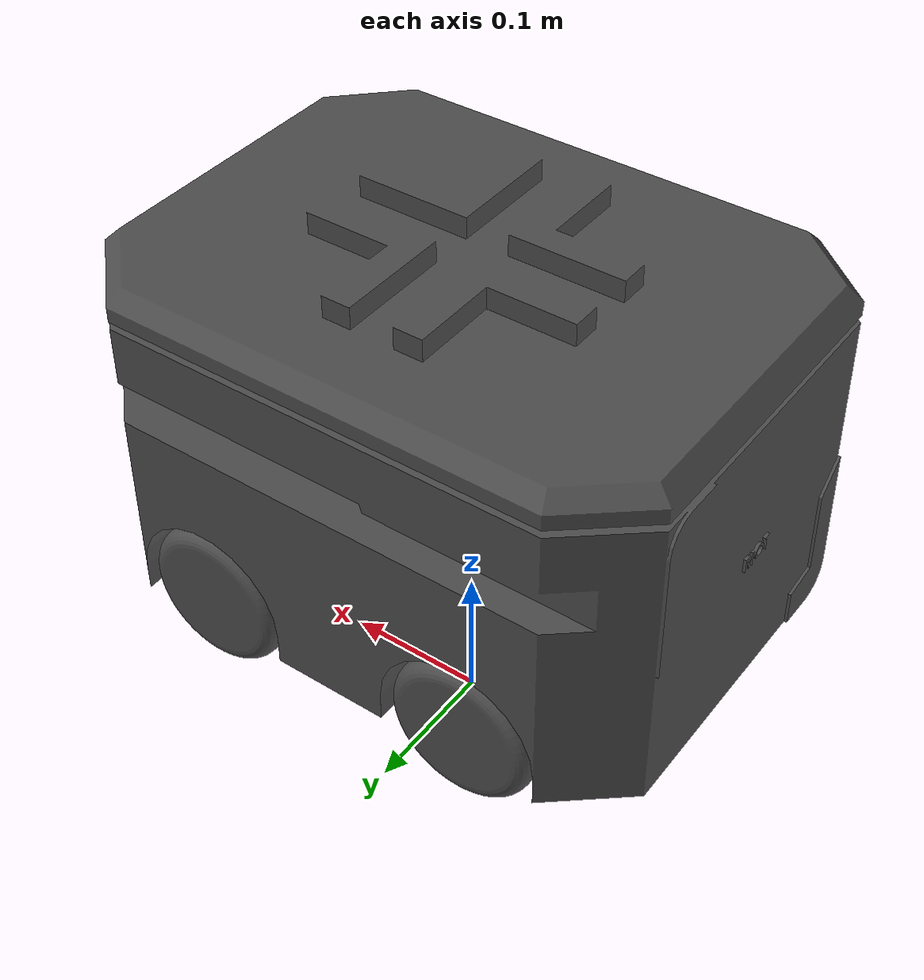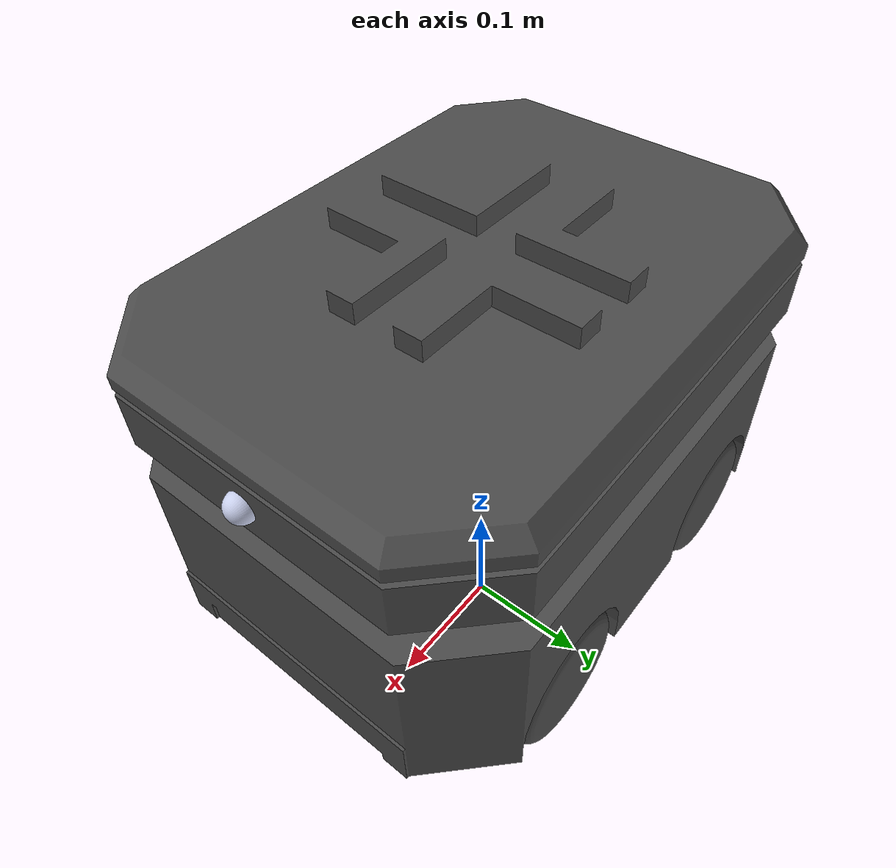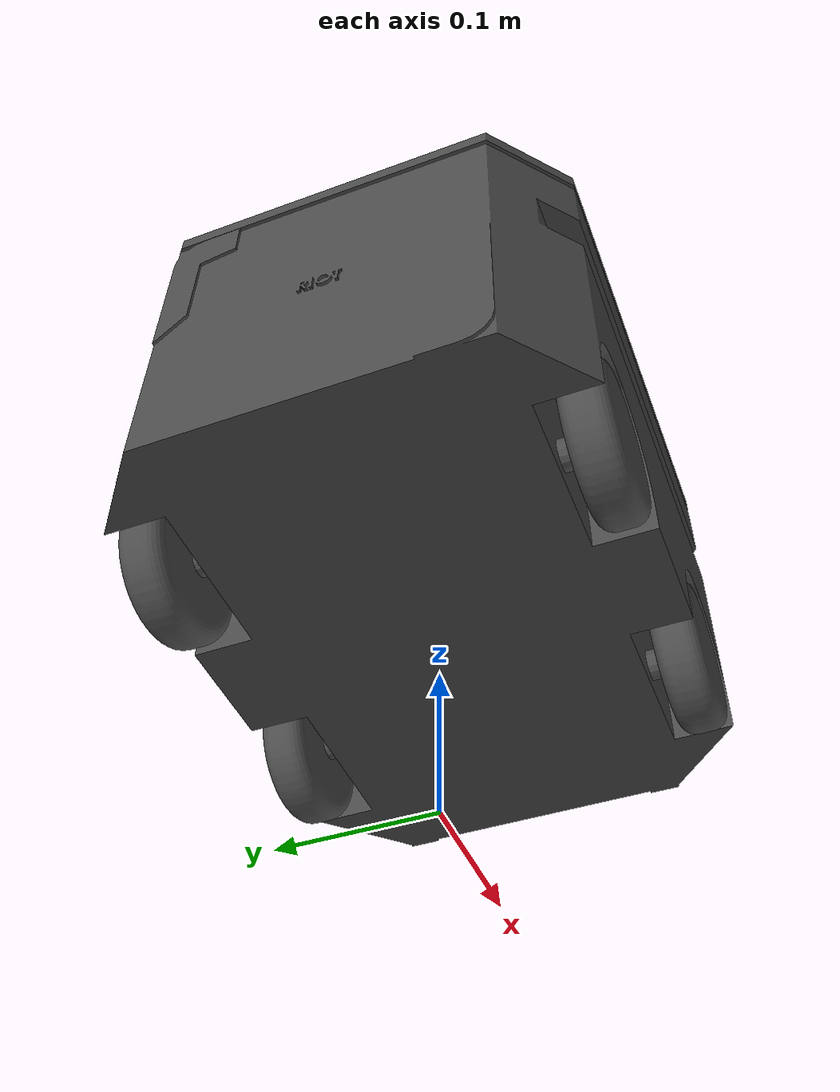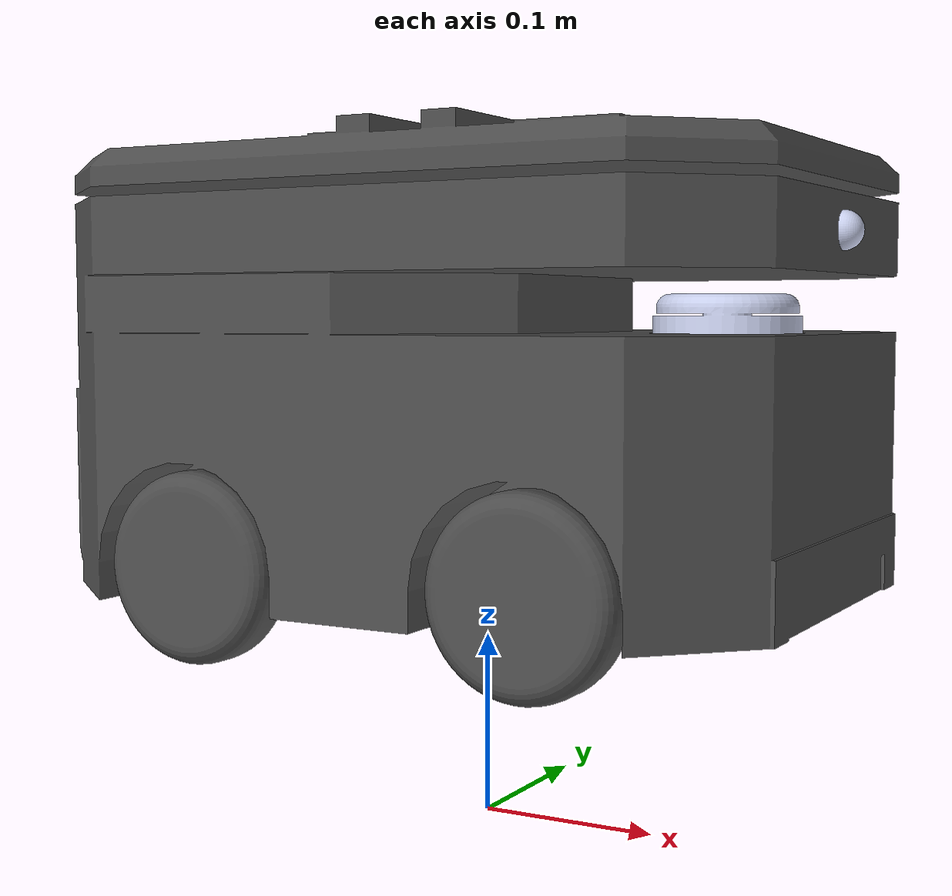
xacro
<?xml version="1.0" encoding="utf-8"?>
<robot
  name="Riot_V3"
  xmlns:xacro="http://www.ros.org/wiki/xacro">

<!-- added new code-->
  <xacro:include filename="riot.gazebo" />

  <!-- base footprint -->
  <link name="base_footprint" />

  <!--base_link-->
  <link name="base_link">

    <inertial>
      <origin
        xyz="-0.00731924788401569 -0.000495519981526249 0.148055312329441"
        rpy="0 0 0" />
      <mass
        value="23.8011559593027" />
      <inertia
        ixx="0.263039373455415"
        ixy="-9.77830112583802E-09"
        ixz="0.00557641591684923"
        iyy="0.404190875888997"
        iyz="-5.8000914660657E-05"
        izz="0.446699879113429" />
    </inertial>
    <visual>
      <origin
        xyz="0 0 0"
        rpy="0 0 0" />
      <geometry>
        <mesh
          filename="file://$(find Riot_V3)/meshes/base_link.STL" />
      </geometry>
      <material
        name="">
        <color
          rgba="0.298039215686275 0.298039215686275 0.298039215686275 1" />
      </material>
    </visual>
    <collision>
      <origin
        xyz="0 0 0"
        rpy="0 0 0" />
      <geometry>
        <mesh
          filename="file://$(find Riot_V3)/meshes/base_link.STL" />
      </geometry>
    </collision>
  </link>

  <joint name="base_joint" type="fixed">
    <parent link="base_footprint"/>
    <child link="base_link"/>
    <origin xyz="0.0 0.0 0.1" rpy="0 0 0"/>
  </joint>

  <link
    name="front_left_Link">
    <inertial>
      <origin
        xyz="-2.91433543964104E-16 0.0727451186755974 5.55111512312578E-17"
        rpy="0 0 0" />
      <mass
        value="0.238445952331711" />
      <inertia
        ixx="0.000175182461271135"
        ixy="7.66564817265142E-20"
        ixz="-1.7205356741103E-21"
        iyy="0.000265785034598442"
        iyz="4.06575814682064E-20"
        izz="0.000175182461271135" />
    </inertial>
    <visual>
      <origin
        xyz="0 0 0"
        rpy="0 0 0" />
      <geometry>
        <mesh
          filename="file://$(find Riot_V3)/meshes/front_left_Link.STL" />
      </geometry>
      <material
        name="">
        <color
          rgba="0.298039215686275 0.298039215686275 0.298039215686275 1" />
      </material>
    </visual>
    <collision>
      <origin
        xyz="0 0 0"
        rpy="0 0 0" />
      <geometry>
        <mesh
          filename="file://$(find Riot_V3)/meshes/front_left_Link.STL" />
      </geometry>
    </collision>
  </link>

  <joint
    name="front_left_Joint"
    type="continuous">
    <origin
      xyz="0.095 0.059124 0.05"
      rpy="0 0 0" />
    <parent
      link="base_link" />
    <child
      link="front_left_Link" />
    <axis
      xyz="0 -1 0" />
  </joint>

  <link
    name="front_right_Link">
    <inertial>
      <origin
        xyz="-5.82867087928207E-16 0.0301635935595795 -1.66533453693773E-16"
        rpy="0 0 0" />
      <mass
        value="0.238445952331711" />
      <inertia
        ixx="0.000175182461271135"
        ixy="6.73391193067169E-20"
        ixz="1.46642578993401E-20"
        iyy="0.000265785034598442"
        iyz="2.96461531539005E-20"
        izz="0.000175182461271135" />
    </inertial>
    <visual>
      <origin
        xyz="0 0 0"
        rpy="0 0 0" />
      <geometry>
        <mesh
          filename="file://$(find Riot_V3)/meshes/front_right_Link.STL" />
      </geometry>
      <material
        name="">
        <color
          rgba="0.298039215686275 0.298039215686275 0.298039215686275 1" />
      </material>
    </visual>
    <collision>
      <origin
        xyz="0 0 0"
        rpy="0 0 0" />
      <geometry>
        <mesh
          filename="file://$(find Riot_V3)/meshes/front_right_Link.STL" />
      </geometry>
    </collision>
  </link>

  <joint
    name="front_right_Joint"
    type="continuous">
    <origin
      xyz="0.095 -0.16302 0.05"
      rpy="0 0 0" />
    <parent
      link="base_link" />
    <child
      link="front_right_Link" />
    <axis
      xyz="0 1 0" />
  </joint>

  <link
    name="back_left_Link">
    <inertial>
      <origin
        xyz="-7.21644966006352E-16 0.0740350172559949 2.77555756156289E-16"
        rpy="0 0 0" />
      <mass
        value="0.238445952331711" />
      <inertia
        ixx="0.000175182461271135"
        ixy="6.09863722023096E-20"
        ixz="-2.75021010061631E-20"
        iyy="0.000265785034598442"
        iyz="4.2351647362715E-20"
        izz="0.000175182461271135" />
    </inertial>
    <visual>
      <origin
        xyz="0 0 0"
        rpy="0 0 0" />
      <geometry>
        <mesh
          filename="file://$(find Riot_V3)/meshes/back_left_Link.STL" />
      </geometry>
      <material
        name="">
        <color
          rgba="0.298039215686275 0.298039215686275 0.298039215686275 1" />
      </material>
    </visual>
    <collision>
      <origin
        xyz="0 0 0"
        rpy="0 0 0" />
      <geometry>
        <mesh
          filename="file://$(find Riot_V3)/meshes/back_left_Link.STL" />
      </geometry>
    </collision>
  </link>

  <joint
    name="back_left_Joint"
    type="continuous">
    <origin
      xyz="-0.095 0.057834 0.05"
      rpy="0 0 0" />
    <parent
      link="base_link" />
    <child
      link="back_left_Link" />
    <axis
      xyz="0 -1 0" />
  </joint>

  <link
    name="back_right_Link">
    <inertial>
      <origin
        xyz="0 0.0293283726076817 1.11022302462516E-16"
        rpy="0 0 0" />
      <mass
        value="0.238445952331711" />
      <inertia
        ixx="0.000175182461271135"
        ixy="6.39509875176997E-20"
        ixz="-2.8640301529036E-20"
        iyy="0.000265785034598442"
        iyz="3.55753837846806E-20"
        izz="0.000175182461271135" />
    </inertial>
    <visual>
      <origin
        xyz="0 0 0"
        rpy="0 0 0" />
      <geometry>
        <mesh
          filename="file://$(find Riot_V3)/meshes/back_right_Link.STL" />
      </geometry>
      <material
        name="">
        <color
          rgba="0.298039215686275 0.298039215686275 0.298039215686275 1" />
      </material>
    </visual>
    <collision>
      <origin
        xyz="0 0 0"
        rpy="0 0 0" />
      <geometry>
        <mesh
          filename="file://$(find Riot_V3)/meshes/back_right_Link.STL" />
      </geometry>
    </collision>
  </link>

  <joint
    name="back_right_Joint"
    type="continuous">
    <origin
      xyz="-0.095 -0.16219 0.05"
      rpy="0 0 0" />
    <parent
      link="base_link" />
    <child
      link="back_right_Link" />
    <axis
      xyz="0 1 0" />
  </joint>

  <link
    name="camera">
    <inertial>
      <origin
        xyz="0.00836854131407994 0 -5.55111512312578E-17"
        rpy="0 0 0" />
      <mass
        value="0.00523598775598299" />
      <inertia
        ixx="2.40855436775218E-07"
        ixy="4.96308367531817E-24"
        ixz="1.65436122510606E-24"
        iyy="2.55254403104171E-07"
        iyz="1.65436122510606E-24"
        izz="2.55254403104171E-07" />
    </inertial>
    <visual>
      <origin
        xyz="0 0 0"
        rpy="0 0 0" />
      <geometry>
        <mesh
          filename="file://$(find Riot_V3)/meshes/camera.STL" />
      </geometry>
      <material
        name="">
        <color
          rgba="0.792156862745098 0.819607843137255 0.933333333333333 1" />
      </material>
    </visual>
    <collision>
      <origin
        xyz="0 0 0"
        rpy="0 0 0" />
      <geometry>
        <mesh
          filename="file://$(find Riot_V3)/meshes/camera.STL" />
      </geometry>
    </collision>
  </link>

  <joint
    name="camera_Joint"
    type="fixed">
    <origin
      xyz="0.19013 -0.00049552 0.22089"
      rpy="0 0 0" />
    <parent
      link="base_link" />
    <child
      link="camera" />
    <axis
      xyz="1 0 0" />
  </joint>

  <link
    name="hokuyo">
    <inertial>
      <origin
        xyz="1.38777878078145E-17 5.55111512312578E-17 0.0193003055082826"
        rpy="0 0 0" />
      <mass
        value="0.171029210078734" />
      <inertia
        ixx="8.16653772390185E-05"
        ixy="4.2351647362715E-22"
        ixz="1.4849546356552E-20"
        iyy="8.16653772390186E-05"
        iyz="2.5410988417629E-21"
        izz="0.00011937610828968" />
    </inertial>
    <visual>
      <origin
        xyz="0 0 0"
        rpy="0 0 0" />
      <geometry>
        <mesh
          filename="file://$(find Riot_V3)/meshes/hokuyo.STL" />
      </geometry>
      <material
        name="">
        <color
          rgba="0.792156862745098 0.819607843137255 0.933333333333333 1" />
      </material>
    </visual>
    <collision>
      <origin
        xyz="0 0 0"
        rpy="0 0 0" />
      <geometry>
        <mesh
          filename="file://$(find Riot_V3)/meshes/hokuyo.STL" />
      </geometry>
    </collision>
  </link>

  <joint
    name="hokuyo_Joint"
    type="fixed">
    <origin
      xyz="0.14 -0.00049552 0.14987"
      rpy="0 0 0" />
    <parent
      link="base_link" />
    <child
      link="hokuyo" />
    <axis
      xyz="0 0 1" />
  </joint>

</robot>
